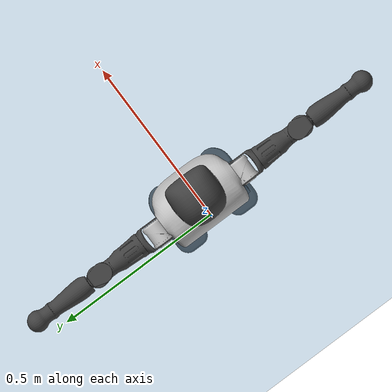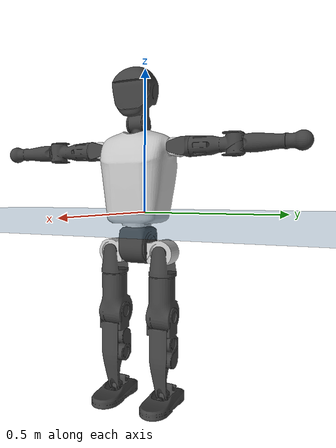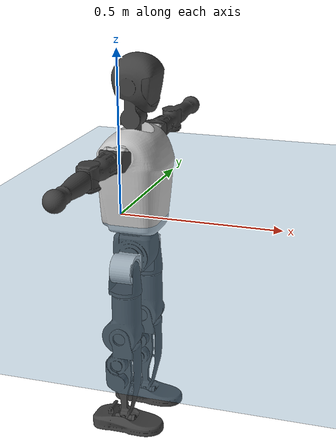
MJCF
<mujoco model="T1">
  <compiler angle="radian" assetdir="assets" balanceinertia="true" inertiafromgeom="false"/>

  <option timestep="0.005" density="1.2" viscosity="2e-05"/>

  <size nkey="1"/>

  <visual>
    <quality shadowsize="8192"/>
    <map shadowclip="0.5"/>
  </visual>

  <default>
    <default class="/">
      <joint armature="0.01" damping="0.01" frictionloss="0.1"/>
      <geom contype="0" conaffinity="0" group="1" solref="-1000 -80"/>
      <site size="0.01 0.005 0.005" group="5"/>
      <general forcelimited="true" biastype="affine" gainprm="25" biasprm="0 -25 -0.6"/>
      <default class="t1">
        <geom rgba="0.25 0.25 0.25 1"/>
        <default class="visual">
          <geom type="mesh" group="2"/>
        </default>
        <default class="collision">
          <geom group="3"/>
        </default>
        <default class="foot">
          <geom size="0.1115 0.05 0.015" type="box" condim="6" group="4" priority="1" solimp="0.015 1 0.015"/>
        </default>
        <default class="reward_collision_sphere">
          <geom group="5" rgba="1 0 0 1"/>
        </default>
      </default>
    </default>
  </default>

  <asset>
    <texture type="skybox" colorspace="auto" name="//unnamed_texture_0" builtin="gradient" rgb1="0.95 0.95 0.95" rgb2="0.95 0.95 0.95" width="100" height="600"/>
    <texture type="2d" colorspace="auto" name="texplane" builtin="checker" rgb1="0.345 0.575 0.748" rgb2="0.345 0.575 0.748" markrgb="1 1 1" width="512" height="512"/>
    <material name="MatPlane" class="/" texture="texplane" texuniform="true" texrepeat="2 2" specular="0.9"/>
    <mesh name="Trunk" class="/" file="Trunk.stl"/>
    <mesh name="H1" class="/" file="H1.stl"/>
    <mesh name="H2" class="/" file="H2.stl"/>
    <mesh name="AL1" class="/" file="AL1.stl"/>
    <mesh name="AL2" class="/" file="AL2.stl"/>
    <mesh name="AL3" class="/" file="AL3.stl"/>
    <mesh name="left_hand_link" class="/" file="left_hand_link.stl"/>
    <mesh name="AR1" class="/" file="AR1.stl"/>
    <mesh name="AR2" class="/" file="AR2.stl"/>
    <mesh name="AR3" class="/" file="AR3.stl"/>
    <mesh name="right_hand_link" class="/" file="right_hand_link.stl"/>
    <mesh name="Waist" class="/" file="Waist.stl"/>
    <mesh name="Hip_Pitch_Left" class="/" file="Hip_Pitch_Left.stl"/>
    <mesh name="Hip_Roll_Left" class="/" file="Hip_Roll_Left.stl"/>
    <mesh name="Hip_Yaw_Left" class="/" file="Hip_Yaw_Left.stl"/>
    <mesh name="Shank_Left" class="/" file="Shank_Left.stl"/>
    <mesh name="Ankle_Cross_Left" class="/" file="Ankle_Cross_Left.stl"/>
    <mesh name="left_foot_link" class="/" file="left_foot_link.stl"/>
    <mesh name="Hip_Pitch_Right" class="/" file="Hip_Pitch_Right.stl"/>
    <mesh name="Hip_Roll_Right" class="/" file="Hip_Roll_Right.stl"/>
    <mesh name="Hip_Yaw_Right" class="/" file="Hip_Yaw_Right.stl"/>
    <mesh name="Shank_Right" class="/" file="Shank_Right.stl"/>
    <mesh name="Ankle_Cross_Right" class="/" file="Ankle_Cross_Right.stl"/>
    <mesh name="right_foot_link" class="/" file="right_foot_link.stl"/>
  </asset>

  <worldbody>
    <geom name="floor" class="/" size="100 100 0.125" type="plane" group="0" material="MatPlane"/>
    <light name="toplight_shadow" class="/" pos="0 0 5" dir="0.0990148 0.0990148 -0.990148" type="directional" ambient="0.04 0.04 0.04" diffuse="0.55 0.55 0.55" specular="0.12 0.12 0.12"/>
    <light name="toplight_fill" class="/" pos="0 0 5" dir="0.0990148 0.0990148 -0.990148" type="directional" castshadow="false" ambient="0.04 0.04 0.04" diffuse="0.3 0.3 0.3" specular="0.08 0.08 0.08"/>
    <body name="trunk" childclass="t1" pos="-0.000120313 0.000129983 0.000329097" quat="1 -3.54525e-05 4.54502e-06 7.33559e-05">
      <inertial pos="0.0432868 -0.000901364 0.105432" quat="0.999969 0.00231119 -0.0075881 0.00024921" mass="8.69719" diaginertia="0.0299915 0.0485053 0.0556324"/>
      <joint name="//unnamed_joint_0" type="free" armature="0" damping="0" frictionloss="0"/>
      <geom name="//unnamed_geom_1" class="visual" rgba="0.76 0.76 0.76 1" mesh="Trunk"/>
      <geom name="//unnamed_geom_2" class="collision" size="0.0676383 0.0901844 0.135277" pos="0.0479363 0 0.11984" type="box"/>
      <geom name="//unnamed_geom_3" class="reward_collision_sphere" size="0.103712" pos="0.0479363 0 0.0998665"/>
      <geom name="//unnamed_geom_4" class="reward_collision_sphere" size="0.0135277" pos="0.0479363 0.077174 0"/>
      <geom name="//unnamed_geom_5" class="reward_collision_sphere" size="0.0135277" pos="0.0479363 -0.077174 0"/>
      <geom name="//unnamed_geom_6" class="reward_collision_sphere" size="0.0135277" pos="0.0479363 0.0971485 0.17976"/>
      <geom name="//unnamed_geom_7" class="reward_collision_sphere" size="0.0135277" pos="0.0479363 -0.0971485 0.17976"/>
      <site name="imu" pos="-0.000230896 0.00539413 0.00499428" size="0.00901844"/>
      <camera name="track" pos="0 -1.81586 0" quat="0.707107 0.707107 0 0" mode="trackcom"/>
      <camera name="ego_camera" pos="0.0974705 0 0.419439" quat="-0.5 -0.5 0.5 0.5"/>
      <body name="H1" pos="0.0495509 0.000280222 0.24314" quat="1 -0.000379801 -0.000170917 -0.000109007">
        <inertial pos="-0.000574753 -0.00160963 0.0563569" quat="0.76646 -0.0133623 0.00103294 0.642152" mass="0.322475" diaginertia="7.99504e-05 0.000137188 0.000151231"/>
        <joint name="AAHead_yaw" pos="0 0 0" axis="0.00372317 0.00372093 0.999986" stiffness="0.000480615" range="-1.59089 1.60614" armature="0.00898211" damping="0.00684578" frictionloss="0.0919318"/>
        <geom name="//unnamed_geom_8" class="visual" mesh="H1"/>
        <body name="H2" pos="-0.000506974 -3.99219e-05 0.0594046" quat="0.999999 -0.000569614 0.000280463 -0.000793613">
          <inertial pos="0.00642202 0.000222864 0.0986669" quat="0.988604 0.106621 -0.0727014 -0.0775204" mass="0.462307" diaginertia="0.000663827 0.00120163 0.00167622"/>
          <joint name="Head_pitch" pos="0 0 0" axis="2.80373e-05 -1 0.000890137" range="-1.22572 0.343559" armature="0.00896745" damping="0.0091396" frictionloss="0.0888488"/>
          <geom name="//unnamed_geom_9" class="visual" mesh="H2"/>
          <geom name="//unnamed_geom_10" class="collision" size="0.0721476" pos="0.00798939 0 0.109853"/>
          <geom name="//unnamed_geom_11" class="reward_collision_sphere" size="0.081166" pos="0.0159788 0 0.0998665"/>
        </body>
      </body>
      <body name="AL1" pos="0.0476623 0.0963504 0.219111" quat="1 -8.21902e-05 0.000411648 -6.06003e-05">
        <inertial pos="-0.00136912 0.0411262 -4.46287e-05" quat="0.508737 0.490947 -0.503634 0.496498" mass="0.389649" diaginertia="0.000449282 0.00079703 0.000289974"/>
        <joint name="Left_Shoulder_Pitch" pos="0 0 0" axis="-0.000877273 0.999999 -0.000989848" range="-3.27508 1.22522" armature="0.00906546" damping="0.011137" frictionloss="0.094566"/>
        <geom name="//unnamed_geom_12" class="visual" rgba="0.76 0.76 0.76 1" mesh="AL1"/>
        <body name="AL2" pos="0.00144465 0.0424237 -9.56465e-05" quat="1 -0.000559372 0.000286723 0.000192981">
          <inertial pos="0.00499464 0.0335731 -0.000278386" quat="0.487715 0.514608 -0.487904 0.509178" mass="0.115864" diaginertia="0.000129055 0.000208656 0.000173282"/>
          <joint name="Left_Shoulder_Roll" pos="0 0 0" axis="-0.999996 -0.00142545 0.00238516" stiffness="0.000280959" range="-1.57263 1.74189" armature="0.00888528" damping="0.00696246" frictionloss="0.0877763"/>
          <geom name="//unnamed_geom_13" class="visual" mesh="AL2"/>
          <body name="AL3" pos="0.0014939 0.0562539 0.000210826" quat="1 0.00050071 0.000293269 0.000160649">
            <inertial pos="0.00107955 0.0776146 -0.00120896" quat="0.704224 0.709913 0.00594914 0.00752337" mass="0.766123" diaginertia="0.0043269 0.00830447 0.000633658"/>
            <joint name="Left_Elbow_Pitch" pos="0 0 0" axis="0.000437641 -0.999995 -0.00325777" range="-2.27711 2.30534" armature="0.0093273" damping="0.0105674" frictionloss="0.0985306"/>
            <geom name="//unnamed_geom_14" class="visual" mesh="AL3"/>
            <geom name="//unnamed_geom_15" class="collision" size="0.0270553 0.0676383" pos="0 0.0453965 0" quat="0.707105 0.707108 0 0" type="cylinder"/>
            <geom name="//unnamed_geom_16" class="reward_collision_sphere" size="0.0324664"/>
            <body name="left_hand_link" pos="0.00132128 0.132852 0.00134316" quat="1 0.000339456 0.00076876 0.00011889">
              <inertial pos="-0.000389633 0.0996787 0.000493259" quat="0.708508 0.705701 -0.00106789 -0.000679987" mass="0.243276" diaginertia="0.00271787 0.00505794 0.000211456"/>
              <joint name="Left_Elbow_Yaw" pos="0 0 0" axis="-0.0070816 -0.00159421 0.999974" range="-2.4266 0.0386472" armature="0.00871956" damping="0.00456066" frictionloss="0.0863912"/>
              <geom name="//unnamed_geom_17" class="visual" mesh="left_hand_link"/>
              <geom name="//unnamed_geom_18" class="collision" size="0.0270553 0.0789114" pos="0 0.118031 0" quat="0.707105 0.707108 0 0" type="cylinder"/>
              <geom name="//unnamed_geom_19" class="reward_collision_sphere" size="0.0450922"/>
              <geom name="//unnamed_geom_20" class="reward_collision_sphere" size="0.0315646" pos="0 0.0998723 0"/>
              <geom name="//unnamed_geom_21" class="reward_collision_sphere" size="0.0315646" pos="0 0.195205 0"/>
            </body>
          </body>
        </body>
      </body>
      <body name="AR1" pos="0.0458511 -0.0941588 0.217004" quat="1 -1.89189e-05 0.000447386 -1.80178e-05">
        <inertial pos="-0.000533317 -0.0421869 -0.000210868" quat="0.502479 0.495019 -0.506641 0.495767" mass="0.385016" diaginertia="0.000446256 0.000806379 0.0002914"/>
        <joint name="Right_Shoulder_Pitch" pos="0 0 0" axis="0.00291252 -0.999928 -0.0116515" range="-1.22534 3.33866" armature="0.0090022" damping="0.0022555" frictionloss="0.082701"/>
        <geom name="//unnamed_geom_22" class="visual" rgba="0.76 0.76 0.76 1" mesh="AR1"/>
        <body name="AR2" pos="0.00127439 -0.0423892 -0.000307957" quat="1 -7.17268e-05 -9.24579e-05 -8.8715e-05">
          <inertial pos="0.00338386 -0.0342342 0.000901455" quat="0.509854 0.49069 -0.509515 0.489558" mass="0.121844" diaginertia="0.000132801 0.000219355 0.000178266"/>
          <joint name="Right_Shoulder_Roll" pos="0 0 0" axis="-0.999966 -0.00782521 0.00245177" range="-1.74459 1.57606" armature="0.00888538" damping="0.00371923" frictionloss="0.0931992"/>
          <geom name="//unnamed_geom_23" class="visual" mesh="AR2"/>
          <body name="AR3" pos="-0.00146669 -0.0555811 0.000311666" quat="1 -0.000380011 -9.21984e-05 0.000135112">
            <inertial pos="-0.000453999 -0.07716 0.00024241" quat="0.71006 0.704131 0.000361952 0.00376235" mass="0.772586" diaginertia="0.00430486 0.00809789 0.000632283"/>
            <joint name="Right_Elbow_Pitch" pos="0 0 0" axis="0.000883674 1 9.90604e-05" range="-2.27992 2.24952" armature="0.00895729" damping="0.0120839" frictionloss="0.0891611"/>
            <geom name="//unnamed_geom_24" class="visual" mesh="AR3"/>
            <geom name="//unnamed_geom_25" class="collision" size="0.0270553 0.0676383" pos="0 -0.0453965 0" quat="0.707105 0.707108 0 0" type="cylinder"/>
            <geom name="//unnamed_geom_26" class="reward_collision_sphere" size="0.0324664"/>
            <body name="right_hand_link" pos="-0.000109359 -0.133923 0.000250559" quat="1 -0.000150653 2.03765e-05 -4.23092e-05">
              <inertial pos="-0.00072984 -0.0996449 -0.000636355" quat="0.707268 0.706945 -0.000279878 0.000955108" mass="0.235483" diaginertia="0.00268481 0.00501424 0.00021362"/>
              <joint name="Right_Elbow_Yaw" pos="0 0 0" axis="-0.00285947 -0.00185618 0.999994" range="-0.0204307 2.45798" armature="0.00881614" damping="0.00820578" frictionloss="0.0880073"/>
              <geom name="//unnamed_geom_27" class="visual" mesh="right_hand_link"/>
              <geom name="//unnamed_geom_28" class="collision" size="0.0270553 0.0789114" pos="0 -0.118031 0" quat="0.707105 0.707108 0 0" type="cylinder"/>
              <geom name="//unnamed_geom_29" class="reward_collision_sphere" size="0.0450922"/>
              <geom name="//unnamed_geom_30" class="reward_collision_sphere" size="0.0315646" pos="0 -0.0998723 0"/>
              <geom name="//unnamed_geom_31" class="reward_collision_sphere" size="0.0315646" pos="0 -0.195205 0"/>
            </body>
          </body>
        </body>
      </body>
      <body name="Waist" pos="0.0481138 -0.0016713 -0.115249" quat="1 -0.00014612 0.000164758 9.51073e-05">
        <inertial pos="0.00205986 -0.00131891 0.007626" quat="0.983601 0.000107413 -0.180341 0.00260758" mass="1.85114" diaginertia="0.00169055 0.00318314 0.00464322"/>
        <joint name="Waist" pos="0 0 0" axis="0.00014018 -0.00102436 0.999999" range="-1.56465 1.57567" armature="0.00867885" damping="0.00692699" frictionloss="0.0830823"/>
        <geom name="//unnamed_geom_32" class="visual" mesh="Waist"/>
        <body name="Hip_Pitch_Left" pos="-0.000336484 0.0949709 0.000682523" quat="1 -6.69514e-05 -0.000180296 -0.000627282">
          <inertial pos="0.000830781 -0.00616711 -0.0182517" quat="0.975126 0.22122 0.0136222 -0.00253549" mass="0.74827" diaginertia="0.000595148 0.000931752 0.00127433"/>
          <joint name="Left_Hip_Pitch" pos="0 0 0" axis="0.00206728 0.999969 0.0076449" range="-1.80738 1.5575" armature="0.00942477" damping="0.0135529" frictionloss="0.0857502"/>
          <geom name="//unnamed_geom_33" class="visual" rgba="0.76 0.76 0.76 1" mesh="Hip_Pitch_Left"/>
          <body name="Hip_Roll_Left" pos="0.00170744 -0.000699996 -0.0208058" quat="0.999999 -0.000776 0.000794459 0.000165108">
            <inertial pos="-9.8992e-05 -0.000686838 -0.0541415" quat="0.700247 -0.00520587 -0.0072533 0.713845" mass="0.28345" diaginertia="0.000562014 0.000941782 0.000517112"/>
            <joint name="Left_Hip_Roll" pos="0 0 0" axis="-0.999964 -0.00246389 0.00813046" range="-1.57222 0.230323" armature="0.00955143" damping="0.0114486" frictionloss="0.0882636"/>
            <geom name="//unnamed_geom_34" class="visual" mesh="Hip_Roll_Left"/>
            <geom name="//unnamed_geom_35" class="reward_collision_sphere" size="0.0496014"/>
            <body name="Hip_Yaw_Left" pos="0.00252964 -0.00124899 -0.081443" quat="1 -0.000340674 -0.000496492 -0.00075076">
              <inertial pos="-0.0052102 -0.00065801 -0.0884782" quat="0.696195 -0.0327895 -0.0312087 0.716424" mass="1.59168" diaginertia="0.0084226 0.0156864 0.00259783"/>
              <joint name="Left_Hip_Yaw" pos="0 0 0" axis="-0.00406438 0.00613984 -0.999973" range="-1.00989 0.975198" armature="0.00923104" damping="0.0116938" frictionloss="0.0859524"/>
              <geom name="//unnamed_geom_36" class="visual" mesh="Hip_Yaw_Left"/>
              <geom name="//unnamed_geom_37" class="collision" size="0.0450922 0.0721476" type="cylinder"/>
              <body name="Shank_Left" pos="-0.0115367 -0.000340334 -0.136149" quat="1 -5.59434e-05 -0.000103283 2.45223e-05">
                <inertial pos="-0.00388385 -0.000619286 -0.123848" quat="0.997573 0.00143928 -0.0239588 0.0653579" mass="1.27982" diaginertia="0.0113681 0.0212985 0.00184051"/>
                <joint name="Left_Knee_Pitch" pos="0 0 0" axis="-7.83824e-05 1 -5.86041e-05" range="-0.0159484 2.32099" armature="0.00890037" damping="0.0126069" frictionloss="0.0926787"/>
                <geom name="//unnamed_geom_38" class="visual" mesh="Shank_Left"/>
                <geom name="//unnamed_geom_39" class="collision" size="0.0450922 0.0676383" pos="0 0 -0.11984" type="cylinder"/>
                <geom name="//unnamed_geom_40" class="reward_collision_sphere" size="0.0586199"/>
                <body name="Ankle_Cross_Left" pos="-0.000747898 -0.000514843 -0.278404" quat="1 0.000265528 7.23219e-05 5.90094e-05">
                  <inertial pos="-0.00265971 -0.000455768 -0.00718067" quat="0.442614 0.551532 0.551904 0.441935" mass="0.0550099" diaginertia="9.43176e-06 1.62079e-05 1.13894e-05"/>
                  <joint name="Left_Ankle_Pitch" pos="0 0 0" axis="0.00405468 0.999992 2.39818e-05" range="-0.853795 0.332253" armature="0.00909692" damping="0.00477797" frictionloss="0.0899445"/>
                  <geom name="//unnamed_geom_41" class="visual" mesh="Ankle_Cross_Left"/>
                  <body name="left_foot_link" pos="-0.00085262 -4.64983e-05 -0.0118699" quat="1 -1.11258e-05 -1.19857e-05 9.71624e-06">
                    <inertial pos="-0.000899163 0.000753538 -0.00873444" quat="-0.00130184 0.621319 0.00104617 0.783556" mass="0.48956" diaginertia="0.000894162 0.00144641 0.00213012"/>
                    <joint name="Left_Ankle_Roll" pos="0 0 0" axis="-0.999999 0.000599046 -0.0010659" range="-0.422927 0.47248" armature="0.00980682" damping="0.0105587" frictionloss="0.0860882"/>
                    <geom name="//unnamed_geom_42" class="visual" mesh="left_foot_link"/>
                    <geom name="left_foot" class="foot" size="0.105617 0.0449031 0.0142026" pos="0.00798939 0 -0.01498"/>
                    <geom name="//unnamed_geom_44" class="reward_collision_sphere" size="0.0468959" pos="0.00798939 0 -0.01498"/>
                    <geom name="//unnamed_geom_45" class="reward_collision_sphere" size="0.0270553" pos="0.0758992 -0.0208824 -0.01498"/>
                    <geom name="//unnamed_geom_46" class="reward_collision_sphere" size="0.0270553" pos="-0.0559257 -0.0208824 -0.01498"/>
                    <site name="left_foot" class="foot" pos="0.00798939 0 -0.01498" size="0.00901844"/>
                  </body>
                </body>
              </body>
            </body>
          </body>
        </body>
        <body name="Hip_Pitch_Right" pos="8.19226e-05 -0.0952126 -0.000573762" quat="1 -0.000240382 -2.70331e-05 -0.000226507">
          <inertial pos="-0.000727362 0.00732233 -0.0179805" quat="0.973882 -0.22657 0.0147841 -0.00113816" mass="0.767214" diaginertia="0.000595867 0.000911287 0.00125474"/>
          <joint name="Right_Hip_Pitch" pos="0 0 0" axis="-0.00330272 -0.999989 -0.0032801" range="-1.57605 1.81054" armature="0.0100214" damping="0.00859241" frictionloss="0.0943129"/>
          <geom name="//unnamed_geom_47" class="visual" rgba="0.76 0.76 0.76 1" mesh="Hip_Pitch_Right"/>
          <body name="Hip_Roll_Right" pos="9.63646e-05 0.000380009 -0.0185532" quat="1 0.000168589 -0.00010065 -0.000304765">
            <inertial pos="0.000941583 -0.0020513 -0.0537804" quat="0.704968 -0.00427976 -0.0112703 0.709136" mass="0.275621" diaginertia="0.000555761 0.000909327 0.000497629"/>
            <joint name="Right_Hip_Roll" pos="0 0 0" axis="-1 0.00029082 0.000194003" range="-0.211699 1.56921" armature="0.00909799" damping="0.00426931" frictionloss="0.0883538"/>
            <geom name="//unnamed_geom_48" class="visual" mesh="Hip_Roll_Right"/>
            <geom name="//unnamed_geom_49" class="reward_collision_sphere" size="0.0496014"/>
            <body name="Hip_Yaw_Right" pos="0.000897695 -0.000356136 -0.082356" quat="1 -8.85444e-05 0.000332903 0.000227366">
              <inertial pos="-0.00597655 -0.00250152 -0.09027" quat="0.712809 -0.0281222 -0.035835 0.699877" mass="1.53711" diaginertia="0.00814846 0.0151752 0.00252575"/>
              <joint name="Right_Hip_Yaw" pos="0 0 0" axis="0.00215015 -0.000729583 -0.999997" range="-0.991394 1.01884" armature="0.00902477" damping="0.00523241" frictionloss="0.0901753"/>
              <geom name="//unnamed_geom_50" class="visual" mesh="Hip_Yaw_Right"/>
              <geom name="//unnamed_geom_51" class="collision" size="0.0450922 0.0721476" type="cylinder"/>
              <body name="Shank_Right" pos="-0.0107391 -0.00158005 -0.13421" quat="1 -4.44127e-05 -0.000149614 7.24591e-05">
                <inertial pos="-0.00506235 -0.00047964 -0.121489" quat="0.999257 -0.000586674 -0.0234864 -0.0305543" mass="1.30808" diaginertia="0.0110518 0.0216573 0.00193658"/>
                <joint name="Right_Knee_Pitch" pos="0 0 0" axis="-0.00363413 -0.999993 0.000940876" range="-2.35893 -0.0220381" armature="0.00902427" damping="0.00488297" frictionloss="0.0889907"/>
                <geom name="//unnamed_geom_52" class="visual" mesh="Shank_Right"/>
                <geom name="//unnamed_geom_53" class="collision" size="0.0450922 0.0676383" pos="0 0 -0.11984" type="cylinder"/>
                <geom name="//unnamed_geom_54" class="reward_collision_sphere" size="0.0586199"/>
                <body name="Ankle_Cross_Right" pos="0.000755614 -0.00115795 -0.279257" quat="1 -0.000130708 -0.000220622 6.22138e-05">
                  <inertial pos="-0.00247547 1.03405e-05 -0.00954892" quat="0.447792 0.544399 0.553108 0.444054" mass="0.0530011" diaginertia="9.07022e-06 1.56932e-05 1.08634e-05"/>
                  <joint name="Right_Ankle_Pitch" pos="0 0 0" axis="0.0046458 -0.999986 -0.00261168" range="-0.349901 0.849793" armature="0.00903728" damping="0.00468481" frictionloss="0.0875777"/>
                  <geom name="//unnamed_geom_55" class="visual" mesh="Ankle_Cross_Right"/>
                  <body name="right_foot_link" pos="-0.000607183 -0.000560722 -0.0120604" quat="1 0.000336772 0.000251772 -0.000261891">
                    <inertial pos="-0.00208496 -0.000251156 -0.00900727" quat="4.04262e-05 0.620782 -6.14741e-05 0.783983" mass="0.499864" diaginertia="0.000882158 0.00147944 0.0021843"/>
                    <joint name="Right_Ankle_Roll" pos="0 0 0" axis="-0.999999 0.00162609 -0.000383685" range="-0.438332 0.446917" armature="0.00861211" damping="0.0177487" frictionloss="0.089086"/>
                    <geom name="//unnamed_geom_56" class="visual" mesh="right_foot_link"/>
                    <geom name="right_foot" class="foot" size="0.0969041 0.0453607 0.0138123" pos="0.00798939 0 -0.01498"/>
                    <geom name="//unnamed_geom_58" class="reward_collision_sphere" size="0.0360738"/>
                    <geom name="//unnamed_geom_59" class="reward_collision_sphere" size="0.0270553" pos="0.00798939 0 -0.01498"/>
                    <geom name="//unnamed_geom_60" class="reward_collision_sphere" size="0.0270553" pos="0.0758992 0.0208824 -0.01498"/>
                    <geom name="//unnamed_geom_61" class="reward_collision_sphere" size="0.0270553" pos="-0.0559257 0.0208824 -0.01498"/>
                    <site name="right_foot" class="foot" pos="0.00798939 0 -0.01498" size="0.00901844"/>
                  </body>
                </body>
              </body>
            </body>
          </body>
        </body>
      </body>
    </body>
  </worldbody>

  <contact>
    <pair class="/" geom1="floor" geom2="left_foot" name="//unnamed_contact_0"/>
    <pair class="/" geom1="floor" geom2="right_foot" name="//unnamed_contact_1"/>
  </contact>

  <actuator>
    <general name="AAHead_yaw" class="/" joint="AAHead_yaw" forcerange="-6.299 6.299" gainprm="22.4503" biasprm="0 -22.4503 -0.536044"/>
    <general name="Head_pitch" class="/" joint="Head_pitch" forcerange="-6.34428 6.34428" gainprm="22.4503" biasprm="0 -22.4503 -0.536044"/>
    <general name="Left_Shoulder_Pitch" class="/" joint="Left_Shoulder_Pitch" forcerange="-16.7707 16.7707" gainprm="22.4503" biasprm="0 -22.4503 -0.536044"/>
    <general name="Left_Shoulder_Roll" class="/" joint="Left_Shoulder_Roll" forcerange="-16.4947 16.4947" gainprm="22.4503" biasprm="0 -22.4503 -0.536044"/>
    <general name="Left_Elbow_Pitch" class="/" joint="Left_Elbow_Pitch" forcerange="-17.1621 17.1621" gainprm="22.4503" biasprm="0 -22.4503 -0.536044"/>
    <general name="Left_Elbow_Yaw" class="/" joint="Left_Elbow_Yaw" forcerange="-16.5155 16.5155" gainprm="22.4503" biasprm="0 -22.4503 -0.536044"/>
    <general name="Right_Shoulder_Pitch" class="/" joint="Right_Shoulder_Pitch" forcerange="-15.2858 15.2858" gainprm="22.4503" biasprm="0 -22.4503 -0.536044"/>
    <general name="Right_Shoulder_Roll" class="/" joint="Right_Shoulder_Roll" forcerange="-16.4409 16.4409" gainprm="22.4503" biasprm="0 -22.4503 -0.536044"/>
    <general name="Right_Elbow_Pitch" class="/" joint="Right_Elbow_Pitch" forcerange="-17.2151 17.2151" gainprm="22.4503" biasprm="0 -22.4503 -0.536044"/>
    <general name="Right_Elbow_Yaw" class="/" joint="Right_Elbow_Yaw" forcerange="-15.5739 15.5739" gainprm="22.4503" biasprm="0 -22.4503 -0.536044"/>
    <general name="Waist" class="/" joint="Waist" forcerange="-27.096 27.096" gainprm="22.4503" biasprm="0 -22.4503 -0.536044"/>
    <general name="Left_Hip_Pitch" class="/" joint="Left_Hip_Pitch" forcerange="-41.8381 41.8381" gainprm="22.4503" biasprm="0 -22.4503 -0.536044"/>
    <general name="Left_Hip_Roll" class="/" joint="Left_Hip_Roll" forcerange="-28.2887 28.2887" gainprm="22.4503" biasprm="0 -22.4503 -0.536044"/>
    <general name="Left_Hip_Yaw" class="/" joint="Left_Hip_Yaw" forcerange="-25.0927 25.0927" gainprm="22.4503" biasprm="0 -22.4503 -0.536044"/>
    <general name="Left_Knee_Pitch" class="/" joint="Left_Knee_Pitch" forcerange="-54.3958 54.3958" gainprm="22.4503" biasprm="0 -22.4503 -0.536044"/>
    <general name="Left_Ankle_Pitch" class="/" joint="Left_Ankle_Pitch" forcerange="-16.5485 16.5485" gainprm="22.4503" biasprm="0 -22.4503 -0.536044"/>
    <general name="Left_Ankle_Roll" class="/" joint="Left_Ankle_Roll" forcerange="-13.392 13.392" gainprm="22.4503" biasprm="0 -22.4503 -0.536044"/>
    <general name="Right_Hip_Pitch" class="/" joint="Right_Hip_Pitch" forcerange="-40.1833 40.1833" gainprm="22.4503" biasprm="0 -22.4503 -0.536044"/>
    <general name="Right_Hip_Roll" class="/" joint="Right_Hip_Roll" forcerange="-27.7309 27.7309" gainprm="22.4503" biasprm="0 -22.4503 -0.536044"/>
    <general name="Right_Hip_Yaw" class="/" joint="Right_Hip_Yaw" forcerange="-27.8426 27.8426" gainprm="22.4503" biasprm="0 -22.4503 -0.536044"/>
    <general name="Right_Knee_Pitch" class="/" joint="Right_Knee_Pitch" forcerange="-55.8348 55.8348" gainprm="22.4503" biasprm="0 -22.4503 -0.536044"/>
    <general name="Right_Ankle_Pitch" class="/" joint="Right_Ankle_Pitch" forcerange="-17.689 17.689" gainprm="22.4503" biasprm="0 -22.4503 -0.536044"/>
    <general name="Right_Ankle_Roll" class="/" joint="Right_Ankle_Roll" forcerange="-12.7453 12.7453" gainprm="22.4503" biasprm="0 -22.4503 -0.536044"/>
  </actuator>

  <sensor>
    <gyro site="imu" name="imu_angular_velocity"/>
    <velocimeter site="imu" name="imu_linear_velocity"/>
    <framelinvel objtype="site" objname="left_foot" name="left_foot_global_linear_velocity"/>
    <framelinvel objtype="site" objname="right_foot" name="right_foot_global_linear_velocity"/>
  </sensor>

  <keyframe>
    <key name="home" qpos="0 0 0.6385 1 0 0 0 0 0 0 1.4 0 -0.4 0 -1.4 0 0.4 0 -0.4 0 0 0.8 -0.4 0 0.4 0 0 -0.8 0.4 0"/>
  </keyframe>
</mujoco>
